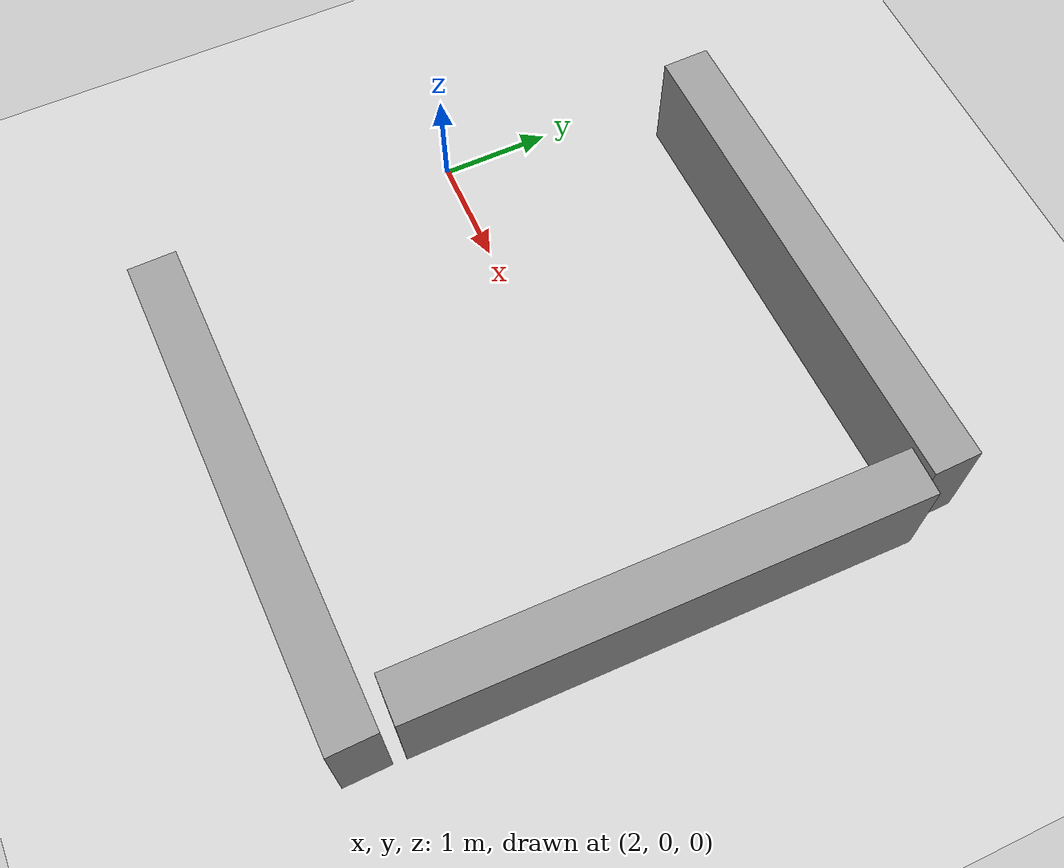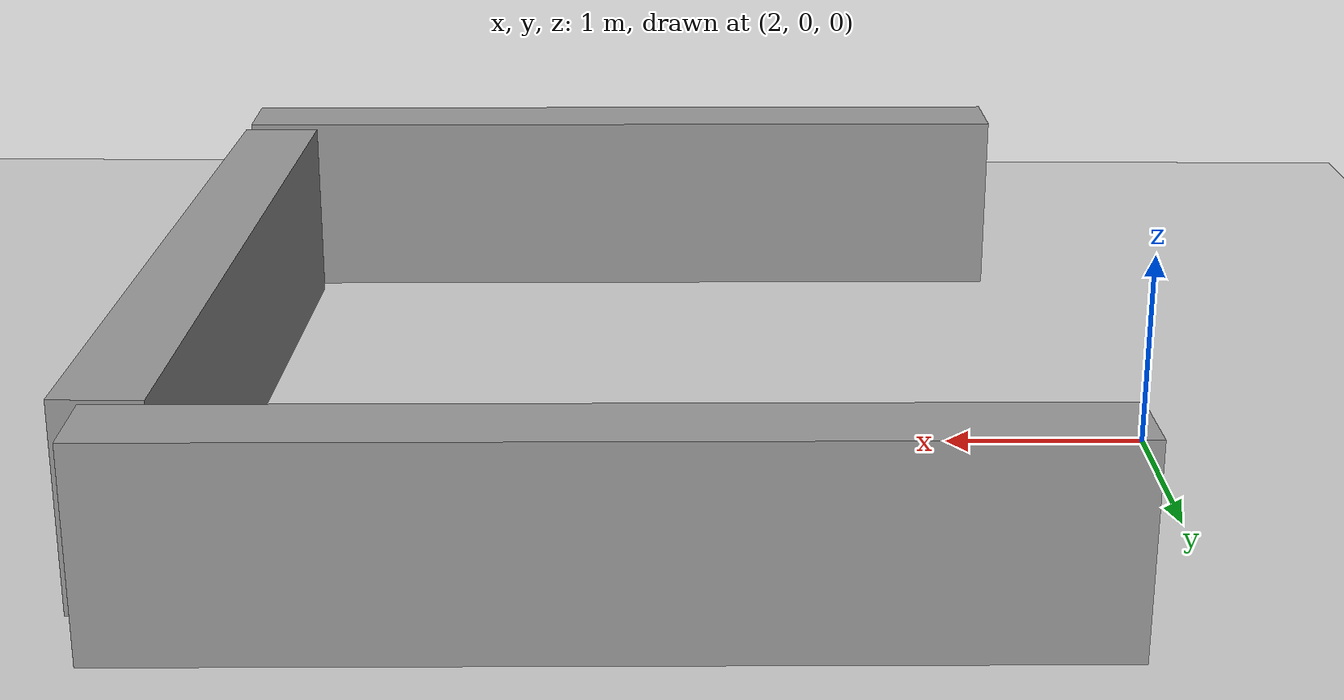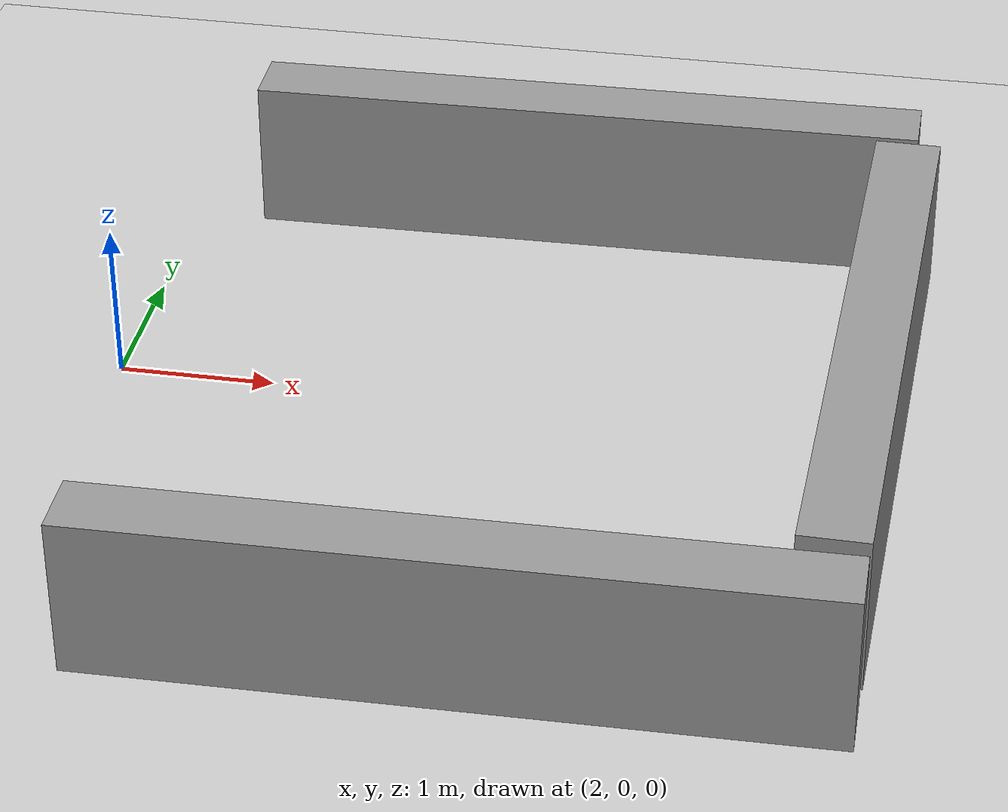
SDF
<sdf version="1.6">
 <world name="default">
  <light name="sun" type="directional">
   <pose>0 0 10 0 -0 0</pose>
   <diffuse>0.8 0.8 0.8 1</diffuse>
   <specular>0.1 0.1 0.1 1</specular>
   <attenuation>
    <range>1000</range>
    <constant>0.9</constant>
    <linear>0.01</linear>
    <quadratic>0.001</quadratic>
   </attenuation>
   <direction>-0.5 0.5 -1</direction>
  </light>
  <model name="ground_plane">
   <static>1</static>
   <link name="link">
    <collision name="collision">
     <geometry><plane><normal>0 0 1</normal><size>100 100</size></plane></geometry>
     <surface><friction><ode><mu>100</mu><mu2>50</mu2></ode></friction></surface>
    </collision>
    <visual name="visual">
     <cast_shadows>0</cast_shadows>
     <geometry><plane><normal>0 0 1</normal><size>100 100</size></plane></geometry>
     <material>
      <script><uri>file://media/materials/scripts/gazebo.material</uri><name>Gazebo/Grey</name></script>
     </material>
    </visual>
   </link>
  </model>
  <gravity>0 0 -9.8</gravity>
  <magnetic_field>6e-06 2.3e-05 -4.2e-05</magnetic_field>
  <atmosphere type="adiabatic"/>
  <physics name="default_physics" default="0" type="ode">
   <max_step_size>0.001</max_step_size>
   <real_time_factor>1</real_time_factor>
   <real_time_update_rate>1000</real_time_update_rate>
  </physics>
  <scene><ambient>0.4 0.4 0.4 1</ambient><background>0.7 0.7 0.7 1</background><shadows>1</shadows></scene>
  <spherical_coordinates>
   <surface_model>EARTH_WGS84</surface_model>
   <latitude_deg>0</latitude_deg>
   <longitude_deg>0</longitude_deg>
   <elevation>0</elevation>
   <heading_deg>0</heading_deg>
  </spherical_coordinates>
  <model name="unit_box_0">
   <pose>6.7694 -0.195301 0.498796 -0.000546 -9e-06 -0.016708</pose>
   <link name="link">
    <inertial>
     <mass>1</mass>
     <inertia>
      <ixx>0.166667</ixx>
      <ixy>0</ixy>
      <ixz>0</ixz>
      <iyy>0.166667</iyy>
      <iyz>0</iyz>
      <izz>0.166667</izz>
     </inertia>
    </inertial>
    <collision name="collision"><geometry><box><size>0.420509 4.42955 1</size></box></geometry></collision>
    <visual name="visual">
     <geometry><box><size>0.420509 4.42955 1</size></box></geometry>
     <material>
      <script><name>Gazebo/Grey</name><uri>file://media/materials/scripts/gazebo.material</uri></script>
     </material>
    </visual>
   </link>
  </model>
  <model name="unit_box_0_clone">
   <pose>4.64886 2.24197 0.498796 -0.000546 9e-06 -1.55403</pose>
   <link name="link">
    <inertial>
     <mass>1</mass>
     <inertia>
      <ixx>0.166667</ixx>
      <ixy>0</ixy>
      <ixz>0</ixz>
      <iyy>0.166667</iyy>
      <iyz>0</iyz>
      <izz>0.166667</izz>
     </inertia>
    </inertial>
    <collision name="collision"><geometry><box><size>0.420509 4.42955 1</size></box></geometry></collision>
    <visual name="visual">
     <geometry><box><size>0.420509 4.42955 1</size></box></geometry>
     <material>
      <script><name>Gazebo/Grey</name><uri>file://media/materials/scripts/gazebo.material</uri></script>
     </material>
    </visual>
   </link>
  </model>
  <model name="unit_box_0_clone_0">
   <pose>4.7233 -2.77225 0.498796 -0.000546 9e-06 -1.55398</pose>
   <link name="link">
    <inertial>
     <mass>1</mass>
     <inertia>
      <ixx>0.166667</ixx>
      <ixy>0</ixy>
      <ixz>0</ixz>
      <iyy>0.166667</iyy>
      <iyz>0</iyz>
      <izz>0.166667</izz>
     </inertia>
    </inertial>
    <collision name="collision"><geometry><box><size>0.420509 4.42955 1</size></box></geometry></collision>
    <visual name="visual">
     <geometry><box><size>0.420509 4.42955 1</size></box></geometry>
     <material>
      <script><name>Gazebo/Grey</name><uri>file://media/materials/scripts/gazebo.material</uri></script>
     </material>
    </visual>
   </link>
  </model>
 </world>
</sdf>
